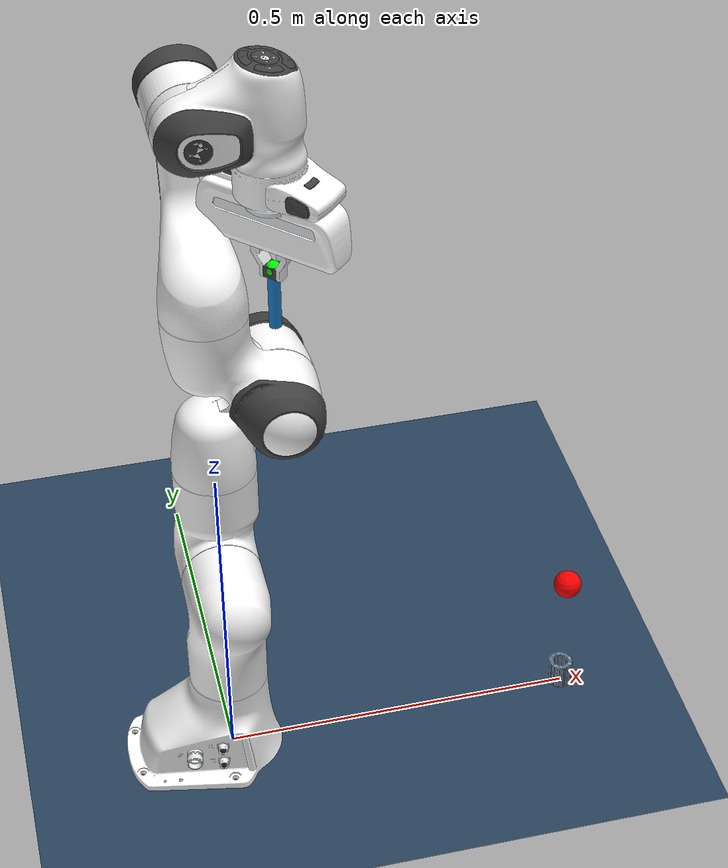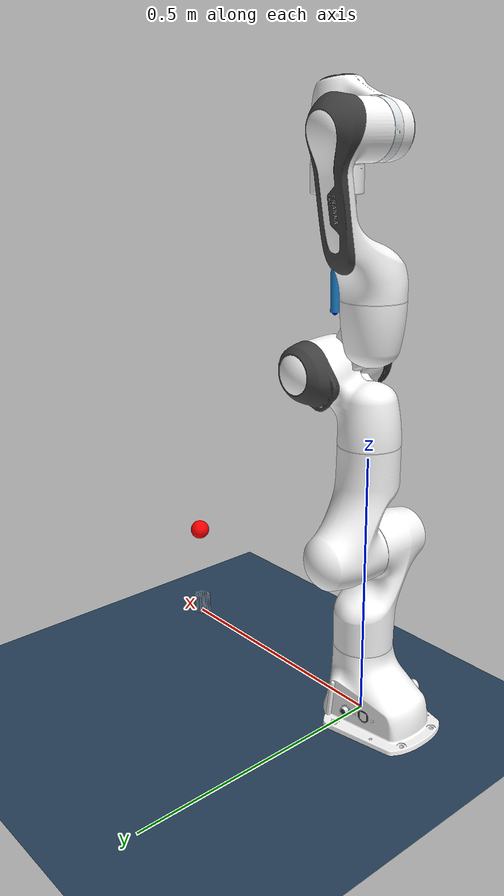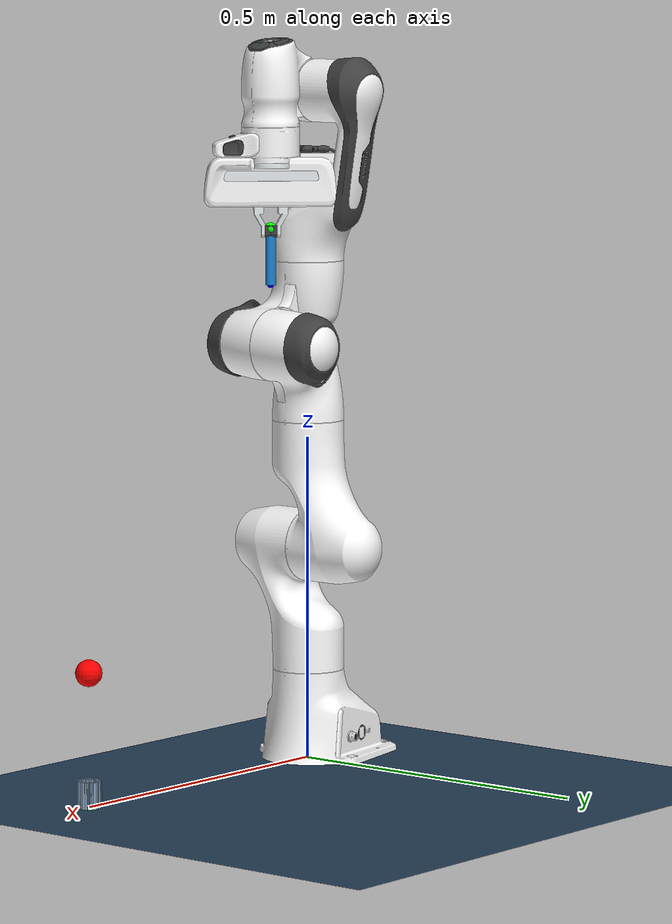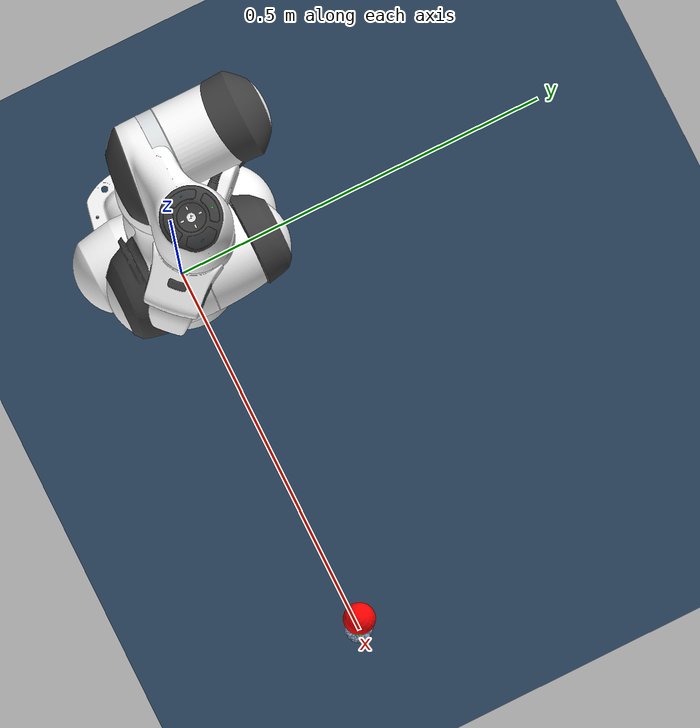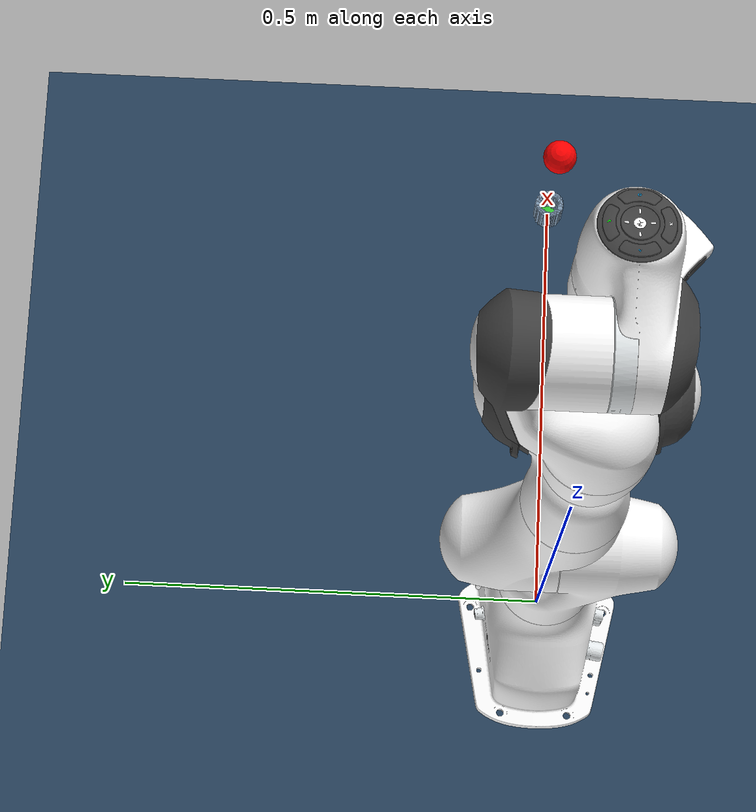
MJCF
<mujoco model="task_peg_in_hole">
  <include file="panda.xml"/>

  <statistic center="0.3 0 0.4" extent="1"/>

  <visual>
    <headlight diffuse="0.6 0.6 0.6" ambient="0.3 0.3 0.3" specular="0 0 0"/>
    <rgba haze="0.15 0.25 0.35 1"/>
    <global azimuth="120" elevation="-20"/>
  </visual>

  <asset>
    <texture type="skybox" builtin="gradient" rgb1="0.3 0.5 0.7" rgb2="0 0 0" width="512" height="3072"/>
    <texture type="2d" name="groundplane" builtin="checker" mark="edge" rgb1="0.2 0.3 0.4" rgb2="0.1 0.2 0.3"
      markrgb="0.8 0.8 0.8" width="300" height="300"/>
    <material name="groundplane" texture="groundplane" texuniform="true" texrepeat="5 5" reflectance="0.2"/>
    <material name="hole_wall" rgba="0.5 0.6 0.7 1"/>
  </asset>

  <worldbody>
    <light pos="0 0 1.5" dir="0 0 -1" directional="true"/>
    <geom name="floor" size="0 0 0.05" type="plane" material="groundplane"/>

    <!-- Round hole: inner radius 11mm, peg radius 8mm => 3mm radial clearance.
         36 tangential boxes (every 10deg) form a smooth cylindrical wall. -->
    <body name="target_hole" pos="0.5 0 0">
      <geom name="hole_bottom" type="cylinder" size="0.014 0.005" pos="0 0 -0.005" rgba="0.2 0.8 0.2 1"/>
      <geom name="wall_0" type="box" size="0.003 0.0025 0.02" pos="0.014 0.0 0.02" euler="0 0 0"
        material="hole_wall" solimp="0.95 0.99 0.001" solref="0.008 1"/>
      <geom name="wall_1" type="box" size="0.003 0.0025 0.02" pos="0.01379 0.00243 0.02" euler="0 0 10"
        material="hole_wall" solimp="0.95 0.99 0.001" solref="0.008 1"/>
      <geom name="wall_2" type="box" size="0.003 0.0025 0.02" pos="0.01316 0.00479 0.02" euler="0 0 20"
        material="hole_wall" solimp="0.95 0.99 0.001" solref="0.008 1"/>
      <geom name="wall_3" type="box" size="0.003 0.0025 0.02" pos="0.01212 0.007 0.02" euler="0 0 30"
        material="hole_wall" solimp="0.95 0.99 0.001" solref="0.008 1"/>
      <geom name="wall_4" type="box" size="0.003 0.0025 0.02" pos="0.01072 0.009 0.02" euler="0 0 40"
        material="hole_wall" solimp="0.95 0.99 0.001" solref="0.008 1"/>
      <geom name="wall_5" type="box" size="0.003 0.0025 0.02" pos="0.009 0.01072 0.02" euler="0 0 50"
        material="hole_wall" solimp="0.95 0.99 0.001" solref="0.008 1"/>
      <geom name="wall_6" type="box" size="0.003 0.0025 0.02" pos="0.007 0.01212 0.02" euler="0 0 60"
        material="hole_wall" solimp="0.95 0.99 0.001" solref="0.008 1"/>
      <geom name="wall_7" type="box" size="0.003 0.0025 0.02" pos="0.00479 0.01316 0.02" euler="0 0 70"
        material="hole_wall" solimp="0.95 0.99 0.001" solref="0.008 1"/>
      <geom name="wall_8" type="box" size="0.003 0.0025 0.02" pos="0.00243 0.01379 0.02" euler="0 0 80"
        material="hole_wall" solimp="0.95 0.99 0.001" solref="0.008 1"/>
      <geom name="wall_9" type="box" size="0.003 0.0025 0.02" pos="0.0 0.014 0.02" euler="0 0 90"
        material="hole_wall" solimp="0.95 0.99 0.001" solref="0.008 1"/>
      <geom name="wall_10" type="box" size="0.003 0.0025 0.02" pos="-0.00243 0.01379 0.02" euler="0 0 100"
        material="hole_wall" solimp="0.95 0.99 0.001" solref="0.008 1"/>
      <geom name="wall_11" type="box" size="0.003 0.0025 0.02" pos="-0.00479 0.01316 0.02" euler="0 0 110"
        material="hole_wall" solimp="0.95 0.99 0.001" solref="0.008 1"/>
      <geom name="wall_12" type="box" size="0.003 0.0025 0.02" pos="-0.007 0.01212 0.02" euler="0 0 120"
        material="hole_wall" solimp="0.95 0.99 0.001" solref="0.008 1"/>
      <geom name="wall_13" type="box" size="0.003 0.0025 0.02" pos="-0.009 0.01072 0.02" euler="0 0 130"
        material="hole_wall" solimp="0.95 0.99 0.001" solref="0.008 1"/>
      <geom name="wall_14" type="box" size="0.003 0.0025 0.02" pos="-0.01072 0.009 0.02" euler="0 0 140"
        material="hole_wall" solimp="0.95 0.99 0.001" solref="0.008 1"/>
      <geom name="wall_15" type="box" size="0.003 0.0025 0.02" pos="-0.01212 0.007 0.02" euler="0 0 150"
        material="hole_wall" solimp="0.95 0.99 0.001" solref="0.008 1"/>
      <geom name="wall_16" type="box" size="0.003 0.0025 0.02" pos="-0.01316 0.00479 0.02" euler="0 0 160"
        material="hole_wall" solimp="0.95 0.99 0.001" solref="0.008 1"/>
      <geom name="wall_17" type="box" size="0.003 0.0025 0.02" pos="-0.01379 0.00243 0.02" euler="0 0 170"
        material="hole_wall" solimp="0.95 0.99 0.001" solref="0.008 1"/>
      <geom name="wall_18" type="box" size="0.003 0.0025 0.02" pos="-0.014 0.0 0.02" euler="0 0 180"
        material="hole_wall" solimp="0.95 0.99 0.001" solref="0.008 1"/>
      <geom name="wall_19" type="box" size="0.003 0.0025 0.02" pos="-0.01379 -0.00243 0.02" euler="0 0 190"
        material="hole_wall" solimp="0.95 0.99 0.001" solref="0.008 1"/>
      <geom name="wall_20" type="box" size="0.003 0.0025 0.02" pos="-0.01316 -0.00479 0.02" euler="0 0 200"
        material="hole_wall" solimp="0.95 0.99 0.001" solref="0.008 1"/>
      <geom name="wall_21" type="box" size="0.003 0.0025 0.02" pos="-0.01212 -0.007 0.02" euler="0 0 210"
        material="hole_wall" solimp="0.95 0.99 0.001" solref="0.008 1"/>
      <geom name="wall_22" type="box" size="0.003 0.0025 0.02" pos="-0.01072 -0.009 0.02" euler="0 0 220"
        material="hole_wall" solimp="0.95 0.99 0.001" solref="0.008 1"/>
      <geom name="wall_23" type="box" size="0.003 0.0025 0.02" pos="-0.009 -0.01072 0.02" euler="0 0 230"
        material="hole_wall" solimp="0.95 0.99 0.001" solref="0.008 1"/>
      <geom name="wall_24" type="box" size="0.003 0.0025 0.02" pos="-0.007 -0.01212 0.02" euler="0 0 240"
        material="hole_wall" solimp="0.95 0.99 0.001" solref="0.008 1"/>
      <geom name="wall_25" type="box" size="0.003 0.0025 0.02" pos="-0.00479 -0.01316 0.02" euler="0 0 250"
        material="hole_wall" solimp="0.95 0.99 0.001" solref="0.008 1"/>
      <geom name="wall_26" type="box" size="0.003 0.0025 0.02" pos="-0.00243 -0.01379 0.02" euler="0 0 260"
        material="hole_wall" solimp="0.95 0.99 0.001" solref="0.008 1"/>
      <geom name="wall_27" type="box" size="0.003 0.0025 0.02" pos="-0.0 -0.014 0.02" euler="0 0 270"
        material="hole_wall" solimp="0.95 0.99 0.001" solref="0.008 1"/>
      <geom name="wall_28" type="box" size="0.003 0.0025 0.02" pos="0.00243 -0.01379 0.02" euler="0 0 280"
        material="hole_wall" solimp="0.95 0.99 0.001" solref="0.008 1"/>
      <geom name="wall_29" type="box" size="0.003 0.0025 0.02" pos="0.00479 -0.01316 0.02" euler="0 0 290"
        material="hole_wall" solimp="0.95 0.99 0.001" solref="0.008 1"/>
      <geom name="wall_30" type="box" size="0.003 0.0025 0.02" pos="0.007 -0.01212 0.02" euler="0 0 300"
        material="hole_wall" solimp="0.95 0.99 0.001" solref="0.008 1"/>
      <geom name="wall_31" type="box" size="0.003 0.0025 0.02" pos="0.009 -0.01072 0.02" euler="0 0 310"
        material="hole_wall" solimp="0.95 0.99 0.001" solref="0.008 1"/>
      <geom name="wall_32" type="box" size="0.003 0.0025 0.02" pos="0.01072 -0.009 0.02" euler="0 0 320"
        material="hole_wall" solimp="0.95 0.99 0.001" solref="0.008 1"/>
      <geom name="wall_33" type="box" size="0.003 0.0025 0.02" pos="0.01212 -0.007 0.02" euler="0 0 330"
        material="hole_wall" solimp="0.95 0.99 0.001" solref="0.008 1"/>
      <geom name="wall_34" type="box" size="0.003 0.0025 0.02" pos="0.01316 -0.00479 0.02" euler="0 0 340"
        material="hole_wall" solimp="0.95 0.99 0.001" solref="0.008 1"/>
      <geom name="wall_35" type="box" size="0.003 0.0025 0.02" pos="0.01379 -0.00243 0.02" euler="0 0 350"
        material="hole_wall" solimp="0.95 0.99 0.001" solref="0.008 1"/>
      <site name="hole_center" pos="0 0 0" size="0.005" rgba="1 0 0 0"/>
    </body>
  </worldbody>

  <sensor>
    <force name="ee_force_sensor" site="ft_sensor_site"/>
    <torque name="ee_torque_sensor" site="ft_sensor_site"/>
  </sensor>

  <contact>
    <exclude body1="left_finger" body2="target_hole"/>
    <exclude body1="right_finger" body2="target_hole"/>
  </contact>
</mujoco>

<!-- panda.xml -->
<mujoco model="panda">
  <compiler angle="radian" meshdir="assets" autolimits="true"/>

  <option integrator="implicitfast"/>

  <default>
    <default class="panda">
      <material specular="0.5" shininess="0.25"/>
      <joint armature="0.1" damping="8" axis="0 0 1" range="-2.8973 2.8973"/>
      <general dyntype="none" biastype="affine" ctrlrange="-2.8973 2.8973" forcerange="-87 87"/>
      <default class="finger">
        <joint axis="0 1 0" type="slide" range="0 0.04"/>
      </default>

      <default class="visual">
        <geom type="mesh" contype="0" conaffinity="0" group="2"/>
      </default>
      <default class="collision">
        <geom type="mesh" group="3"/>
        <default class="fingertip_pad_collision_1">
          <geom type="box" size="0.0085 0.004 0.0085" pos="0 0.0055 0.0445"/>
        </default>
        <default class="fingertip_pad_collision_2">
          <geom type="box" size="0.003 0.002 0.003" pos="0.0055 0.002 0.05"/>
        </default>
        <default class="fingertip_pad_collision_3">
          <geom type="box" size="0.003 0.002 0.003" pos="-0.0055 0.002 0.05"/>
        </default>
        <default class="fingertip_pad_collision_4">
          <geom type="box" size="0.003 0.002 0.0035" pos="0.0055 0.002 0.0395"/>
        </default>
        <default class="fingertip_pad_collision_5">
          <geom type="box" size="0.003 0.002 0.0035" pos="-0.0055 0.002 0.0395"/>
        </default>
      </default>
    </default>
  </default>

  <asset>
    <material class="panda" name="white" rgba="1 1 1 1"/>
    <material class="panda" name="off_white" rgba="0.901961 0.921569 0.929412 1"/>
    <material class="panda" name="black" rgba="0.25 0.25 0.25 1"/>
    <material class="panda" name="green" rgba="0 1 0 1"/>
    <material class="panda" name="light_blue" rgba="0.039216 0.541176 0.780392 1"/>

    <!-- Collision meshes -->
    <mesh name="link0_c" file="link0.stl"/>
    <mesh name="link1_c" file="link1.stl"/>
    <mesh name="link2_c" file="link2.stl"/>
    <mesh name="link3_c" file="link3.stl"/>
    <mesh name="link4_c" file="link4.stl"/>
    <mesh name="link5_c0" file="link5_collision_0.obj"/>
    <mesh name="link5_c1" file="link5_collision_1.obj"/>
    <mesh name="link5_c2" file="link5_collision_2.obj"/>
    <mesh name="link6_c" file="link6.stl"/>
    <mesh name="link7_c" file="link7.stl"/>
    <mesh name="hand_c" file="hand.stl"/>

    <!-- Visual meshes -->
    <mesh file="link0_0.obj"/>
    <mesh file="link0_1.obj"/>
    <mesh file="link0_2.obj"/>
    <mesh file="link0_3.obj"/>
    <mesh file="link0_4.obj"/>
    <mesh file="link0_5.obj"/>
    <mesh file="link0_7.obj"/>
    <mesh file="link0_8.obj"/>
    <mesh file="link0_9.obj"/>
    <mesh file="link0_10.obj"/>
    <mesh file="link0_11.obj"/>
    <mesh file="link1.obj"/>
    <mesh file="link2.obj"/>
    <mesh file="link3_0.obj"/>
    <mesh file="link3_1.obj"/>
    <mesh file="link3_2.obj"/>
    <mesh file="link3_3.obj"/>
    <mesh file="link4_0.obj"/>
    <mesh file="link4_1.obj"/>
    <mesh file="link4_2.obj"/>
    <mesh file="link4_3.obj"/>
    <mesh file="link5_0.obj"/>
    <mesh file="link5_1.obj"/>
    <mesh file="link5_2.obj"/>
    <mesh file="link6_0.obj"/>
    <mesh file="link6_1.obj"/>
    <mesh file="link6_2.obj"/>
    <mesh file="link6_3.obj"/>
    <mesh file="link6_4.obj"/>
    <mesh file="link6_5.obj"/>
    <mesh file="link6_6.obj"/>
    <mesh file="link6_7.obj"/>
    <mesh file="link6_8.obj"/>
    <mesh file="link6_9.obj"/>
    <mesh file="link6_10.obj"/>
    <mesh file="link6_11.obj"/>
    <mesh file="link6_12.obj"/>
    <mesh file="link6_13.obj"/>
    <mesh file="link6_14.obj"/>
    <mesh file="link6_15.obj"/>
    <mesh file="link6_16.obj"/>
    <mesh file="link7_0.obj"/>
    <mesh file="link7_1.obj"/>
    <mesh file="link7_2.obj"/>
    <mesh file="link7_3.obj"/>
    <mesh file="link7_4.obj"/>
    <mesh file="link7_5.obj"/>
    <mesh file="link7_6.obj"/>
    <mesh file="link7_7.obj"/>
    <mesh file="hand_0.obj"/>
    <mesh file="hand_1.obj"/>
    <mesh file="hand_2.obj"/>
    <mesh file="hand_3.obj"/>
    <mesh file="hand_4.obj"/>
    <mesh file="finger_0.obj"/>
    <mesh file="finger_1.obj"/>
  </asset>

  <worldbody>

    <light name="top" pos="0 0 2" mode="trackcom"/>
    <body name="target_mocap" mocap="true" pos="0.5 0 0.2">
      <geom type="sphere" size="0.02" rgba="1 0 0 1" contype="0" conaffinity="0"/>
    </body>
    <body name="link0" childclass="panda">
      <inertial mass="0.629769" pos="-0.041018 -0.00014 0.049974"
        fullinertia="0.00315 0.00388 0.004285 8.2904e-7 0.00015 8.2299e-6"/>
      <geom mesh="link0_0" material="off_white" class="visual"/>
      <geom mesh="link0_1" material="black" class="visual"/>
      <geom mesh="link0_2" material="off_white" class="visual"/>
      <geom mesh="link0_3" material="black" class="visual"/>
      <geom mesh="link0_4" material="off_white" class="visual"/>
      <geom mesh="link0_5" material="black" class="visual"/>
      <geom mesh="link0_7" material="white" class="visual"/>
      <geom mesh="link0_8" material="white" class="visual"/>
      <geom mesh="link0_9" material="black" class="visual"/>
      <geom mesh="link0_10" material="off_white" class="visual"/>
      <geom mesh="link0_11" material="white" class="visual"/>
      <geom mesh="link0_c" class="collision"/>
      <body name="link1" pos="0 0 0.333">
        <inertial mass="4.970684" pos="0.003875 0.002081 -0.04762"
          fullinertia="0.70337 0.70661 0.0091170 -0.00013900 0.0067720 0.019169"/>
        <joint name="joint1"/>
        <geom material="white" mesh="link1" class="visual"/>
        <geom mesh="link1_c" class="collision"/>
        <body name="link2" quat="1 -1 0 0">
          <inertial mass="0.646926" pos="-0.003141 -0.02872 0.003495"
            fullinertia="0.0079620 2.8110e-2 2.5995e-2 -3.925e-3 1.0254e-2 7.04e-4"/>
          <joint name="joint2" range="-1.7628 1.7628"/>
          <geom material="white" mesh="link2" class="visual"/>
          <geom mesh="link2_c" class="collision"/>
          <body name="link3" pos="0 -0.316 0" quat="1 1 0 0">
            <joint name="joint3"/>
            <inertial mass="3.228604" pos="2.7518e-2 3.9252e-2 -6.6502e-2"
              fullinertia="3.7242e-2 3.6155e-2 1.083e-2 -4.761e-3 -1.1396e-2 -1.2805e-2"/>
            <geom mesh="link3_0" material="white" class="visual"/>
            <geom mesh="link3_1" material="white" class="visual"/>
            <geom mesh="link3_2" material="white" class="visual"/>
            <geom mesh="link3_3" material="black" class="visual"/>
            <geom mesh="link3_c" class="collision"/>
            <body name="link4" pos="0.0825 0 0" quat="1 1 0 0">
              <inertial mass="3.587895" pos="-5.317e-2 1.04419e-1 2.7454e-2"
                fullinertia="2.5853e-2 1.9552e-2 2.8323e-2 7.796e-3 -1.332e-3 8.641e-3"/>
              <joint name="joint4" range="-3.0718 -0.0698"/>
              <geom mesh="link4_0" material="white" class="visual"/>
              <geom mesh="link4_1" material="white" class="visual"/>
              <geom mesh="link4_2" material="black" class="visual"/>
              <geom mesh="link4_3" material="white" class="visual"/>
              <geom mesh="link4_c" class="collision"/>
              <body name="link5" pos="-0.0825 0.384 0" quat="1 -1 0 0">
                <inertial mass="1.225946" pos="-1.1953e-2 4.1065e-2 -3.8437e-2"
                  fullinertia="3.5549e-2 2.9474e-2 8.627e-3 -2.117e-3 -4.037e-3 2.29e-4"/>
                <joint name="joint5"/>
                <geom mesh="link5_0" material="black" class="visual"/>
                <geom mesh="link5_1" material="white" class="visual"/>
                <geom mesh="link5_2" material="white" class="visual"/>
                <geom mesh="link5_c0" class="collision"/>
                <geom mesh="link5_c1" class="collision"/>
                <geom mesh="link5_c2" class="collision"/>
                <body name="link6" quat="1 1 0 0">
                  <inertial mass="1.666555" pos="6.0149e-2 -1.4117e-2 -1.0517e-2"
                    fullinertia="1.964e-3 4.354e-3 5.433e-3 1.09e-4 -1.158e-3 3.41e-4"/>
                  <joint name="joint6" range="-0.0175 3.7525"/>
                  <geom mesh="link6_0" material="off_white" class="visual"/>
                  <geom mesh="link6_1" material="white" class="visual"/>
                  <geom mesh="link6_2" material="black" class="visual"/>
                  <geom mesh="link6_3" material="white" class="visual"/>
                  <geom mesh="link6_4" material="white" class="visual"/>
                  <geom mesh="link6_5" material="white" class="visual"/>
                  <geom mesh="link6_6" material="white" class="visual"/>
                  <geom mesh="link6_7" material="light_blue" class="visual"/>
                  <geom mesh="link6_8" material="light_blue" class="visual"/>
                  <geom mesh="link6_9" material="black" class="visual"/>
                  <geom mesh="link6_10" material="black" class="visual"/>
                  <geom mesh="link6_11" material="white" class="visual"/>
                  <geom mesh="link6_12" material="green" class="visual"/>
                  <geom mesh="link6_13" material="white" class="visual"/>
                  <geom mesh="link6_14" material="black" class="visual"/>
                  <geom mesh="link6_15" material="black" class="visual"/>
                  <geom mesh="link6_16" material="white" class="visual"/>
                  <geom mesh="link6_c" class="collision"/>
                  <body name="link7" pos="0.088 0 0" quat="1 1 0 0">
                    <inertial mass="7.35522e-01" pos="1.0517e-2 -4.252e-3 6.1597e-2"
                      fullinertia="1.2516e-2 1.0027e-2 4.815e-3 -4.28e-4 -1.196e-3 -7.41e-4"/>
                    <joint name="joint7"/>
                    <geom mesh="link7_0" material="white" class="visual"/>
                    <geom mesh="link7_1" material="black" class="visual"/>
                    <geom mesh="link7_2" material="black" class="visual"/>
                    <geom mesh="link7_3" material="black" class="visual"/>
                    <geom mesh="link7_4" material="black" class="visual"/>
                    <geom mesh="link7_5" material="black" class="visual"/>
                    <geom mesh="link7_6" material="black" class="visual"/>
                    <geom mesh="link7_7" material="white" class="visual"/>
                    <geom mesh="link7_c" class="collision"/>
                    <site name="ft_sensor_site" pos="0 0 0.207" size="0.01" rgba="1 0 1 0"/>
                    <body name="hand" pos="0 0 0.107" quat="0.9238795 0 0 -0.3826834">
                      <inertial mass="0.73" pos="-0.01 0 0.03" diaginertia="0.001 0.0025 0.0017"/>
                      <geom mesh="hand_0" material="off_white" class="visual"/>
                      <geom mesh="hand_1" material="black" class="visual"/>
                      <geom mesh="hand_2" material="black" class="visual"/>
                      <geom mesh="hand_3" material="white" class="visual"/>
                      <geom mesh="hand_4" material="off_white" class="visual"/>
                      <geom mesh="hand_c" class="collision"/>
                      <!-- Added tool and FT sensor sites for simplified peg-in-hole -->
                      <site name="ee_site" pos="0 0 0.10" size="0.01" rgba="0 1 0 1"/>
                      <geom name="peg_geom" type="cylinder" size="0.008 0.04" pos="0 0 0.145"
                            rgba="0.1 0.5 0.8 1" mass="0.05"
                            solimp="0.95 0.99 0.001" solref="0.008 1"/>
                      <site name="peg_tip" pos="0 0 0.185" size="0.005" rgba="0 0 1 1"/>

                      <body name="left_finger" pos="0 0 0.0584">
                        <inertial mass="0.015" pos="0 0 0" diaginertia="2.375e-6 2.375e-6 7.5e-7"/>
                        <joint name="finger_joint1" class="finger"/>
                        <geom mesh="finger_0" material="off_white" class="visual"/>
                        <geom mesh="finger_1" material="black" class="visual"/>
                        <geom mesh="finger_0" class="collision"/>
                        <geom class="fingertip_pad_collision_1"/>
                        <geom class="fingertip_pad_collision_2"/>
                        <geom class="fingertip_pad_collision_3"/>
                        <geom class="fingertip_pad_collision_4"/>
                        <geom class="fingertip_pad_collision_5"/>
                      </body>
                      <body name="right_finger" pos="0 0 0.0584" quat="0 0 0 1">
                        <inertial mass="0.015" pos="0 0 0" diaginertia="2.375e-6 2.375e-6 7.5e-7"/>
                        <joint name="finger_joint2" class="finger"/>
                        <geom mesh="finger_0" material="off_white" class="visual"/>
                        <geom mesh="finger_1" material="black" class="visual"/>
                        <geom mesh="finger_0" class="collision"/>
                        <geom class="fingertip_pad_collision_1"/>
                        <geom class="fingertip_pad_collision_2"/>
                        <geom class="fingertip_pad_collision_3"/>
                        <geom class="fingertip_pad_collision_4"/>
                        <geom class="fingertip_pad_collision_5"/>
                      </body>
                    </body>
                  </body>
                </body>
              </body>
            </body>
          </body>
        </body>
      </body>
    </body>
  </worldbody>

  <tendon>
    <fixed name="split">
      <joint joint="finger_joint1" coef="0.5"/>
      <joint joint="finger_joint2" coef="0.5"/>
    </fixed>
  </tendon>

  <equality>
    <joint joint1="finger_joint1" joint2="finger_joint2" solimp="0.95 0.99 0.001" solref="0.005 1"/>
  </equality>

  <actuator>
    <general class="panda" name="actuator1" joint="joint1" gainprm="2250" biasprm="0 -2250 -225"/>
    <general class="panda" name="actuator2" joint="joint2" gainprm="2250" biasprm="0 -2250 -225"
      ctrlrange="-1.7628 1.7628"/>

    <general class="panda" name="actuator3" joint="joint3" gainprm="1750" biasprm="0 -1750 -175"/>
    <general class="panda" name="actuator4" joint="joint4" gainprm="1750" biasprm="0 -1750 -175"
      ctrlrange="-3.0718 -0.0698"/>

    <general class="panda" name="actuator5" joint="joint5" gainprm="1000" biasprm="0 -1000 -100" forcerange="-12 12"/>
    <general class="panda" name="actuator6" joint="joint6" gainprm="1000" biasprm="0 -1000 -100" forcerange="-12 12"
      ctrlrange="-0.0175 3.7525"/>
    <general class="panda" name="actuator7" joint="joint7" gainprm="1000" biasprm="0 -1000 -100" forcerange="-12 12"/>

    <general class="panda" name="actuator8" tendon="split" forcerange="-100 100" ctrlrange="0 255"
      gainprm="0.01568627451 0 0" biasprm="0 -100 -10"/>
  </actuator>

  <keyframe>
    <key name="home" qpos="0 0 0 -1.57079 0 1.57079 -0.7853 0.04 0.04" ctrl="0 0 0 -1.57079 0 1.57079 -0.7853 255"/>
  </keyframe>

  <contact>
    <exclude body1="link0" body2="link1"/>
  </contact>
</mujoco>
